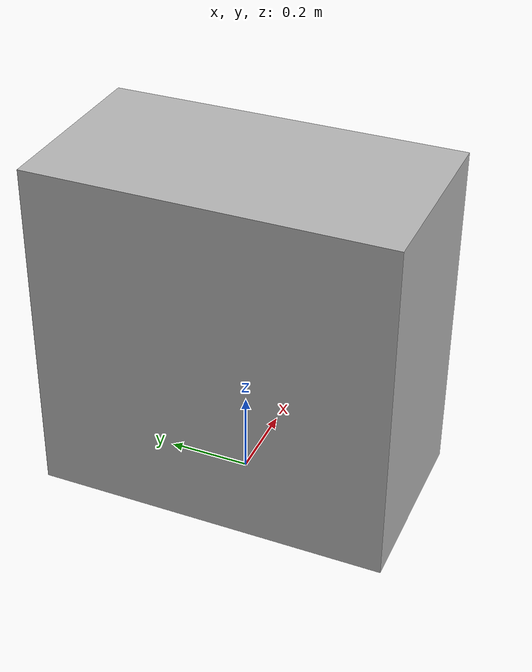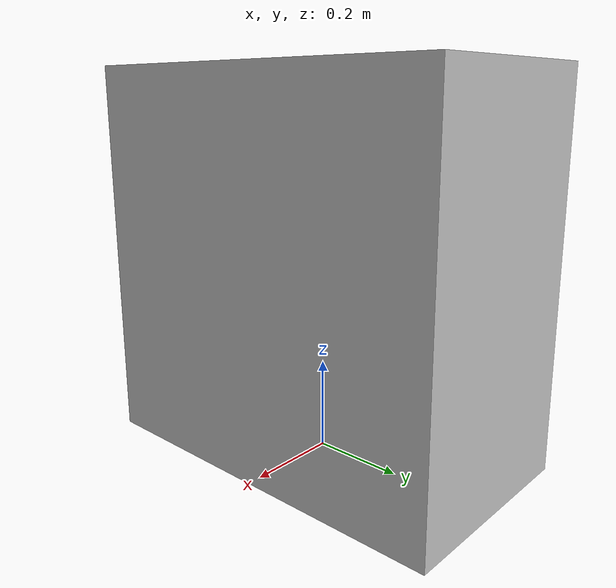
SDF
<?xml version="1.0" ?>
<sdf version="1.6">
  <model name="rwc2023/kitchen_shelf">
    <static>true</static>
    <link name="1_link">
      <collision name="1_col">
        <geometry>
          <box>
            <size>0.46 0.86 0.84</size>
          </box>
        </geometry>
      </collision>
      <visual name="1_vis">
        <geometry>
          <box>
            <size>0.46 0.86 0.84</size>
          </box>
        </geometry>
      </visual>
      <pose>0.0 0.0 0.42 0 0 0</pose>
    </link>
   </model>
</sdf>
